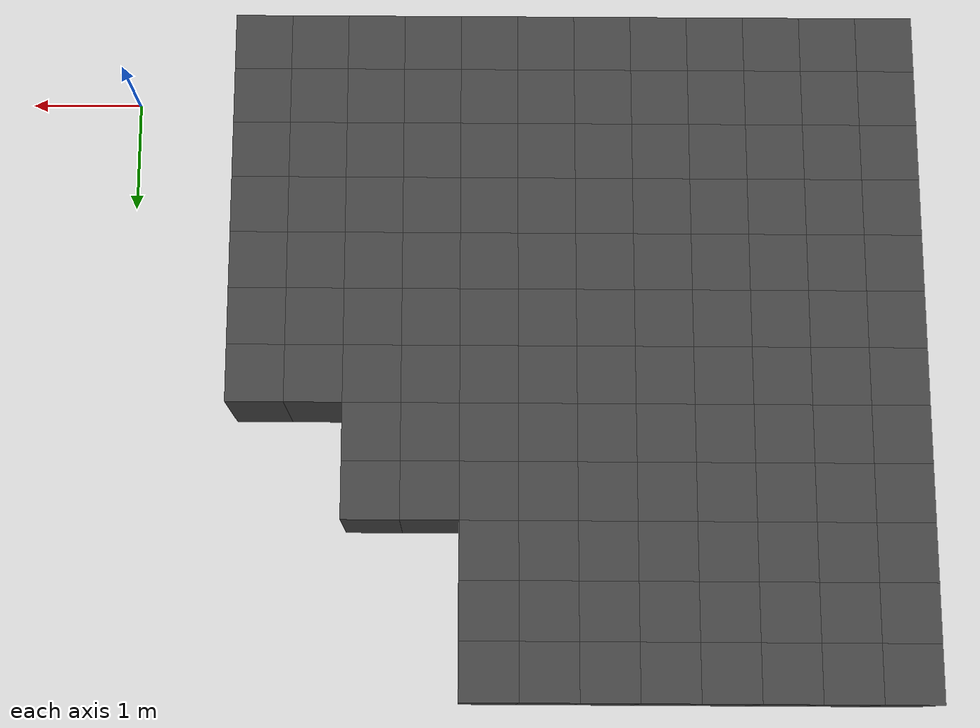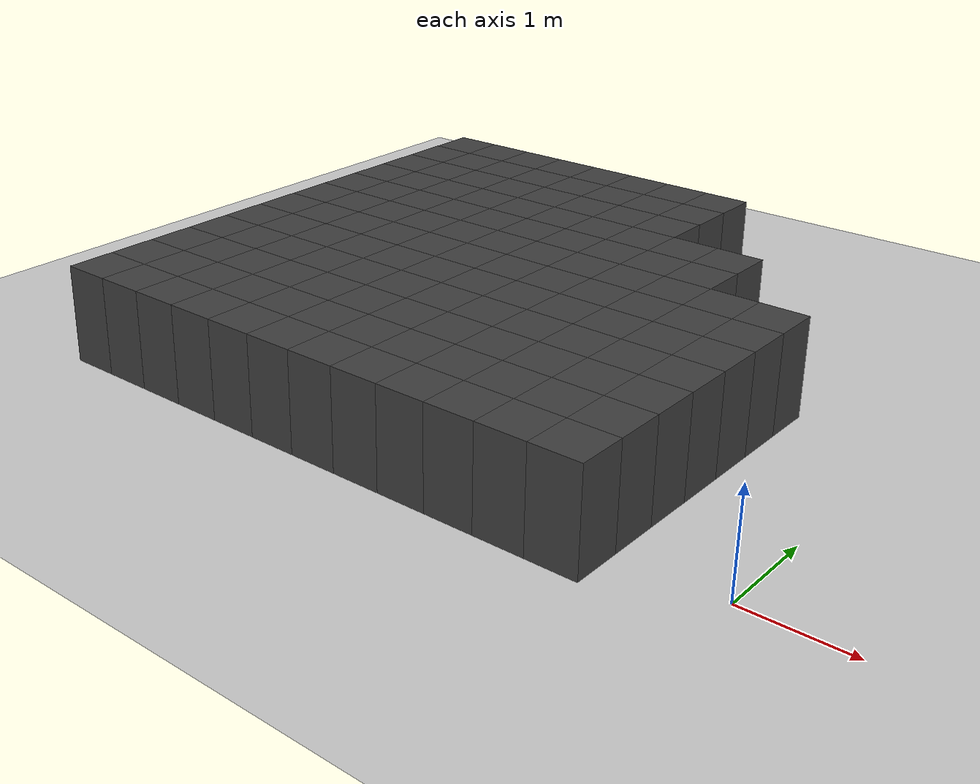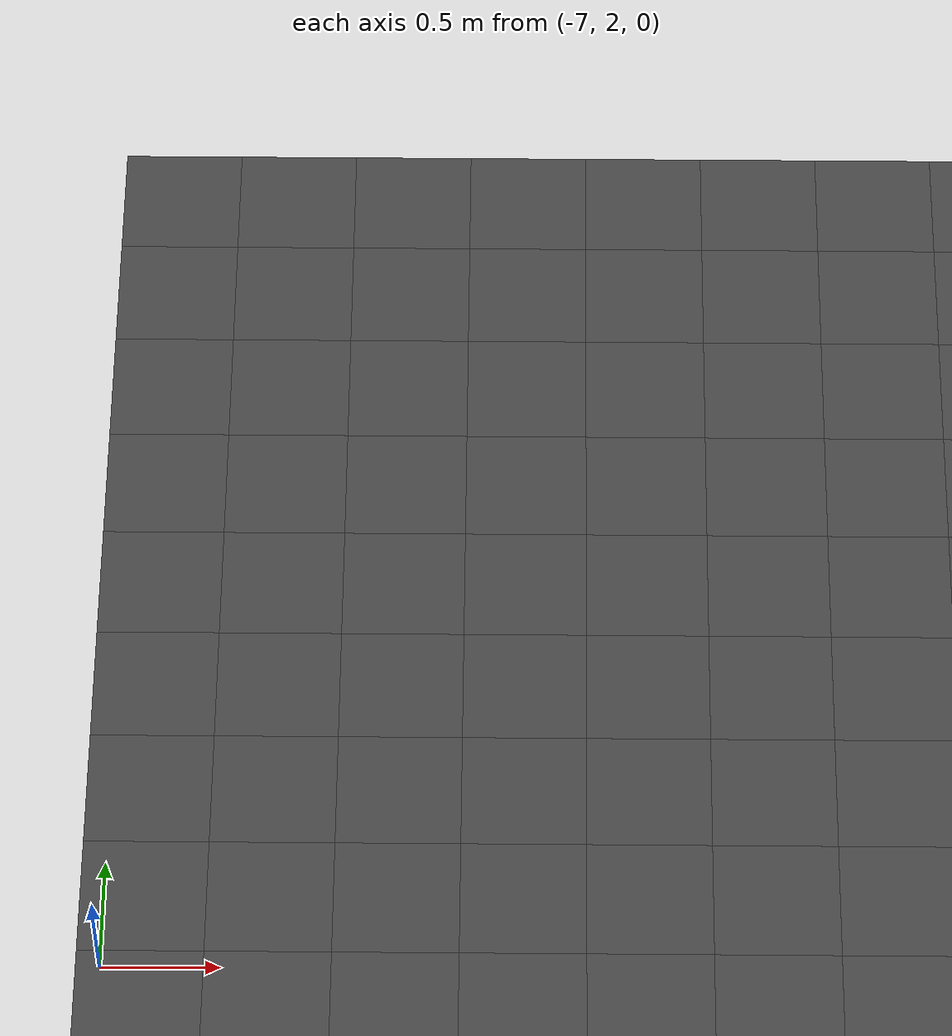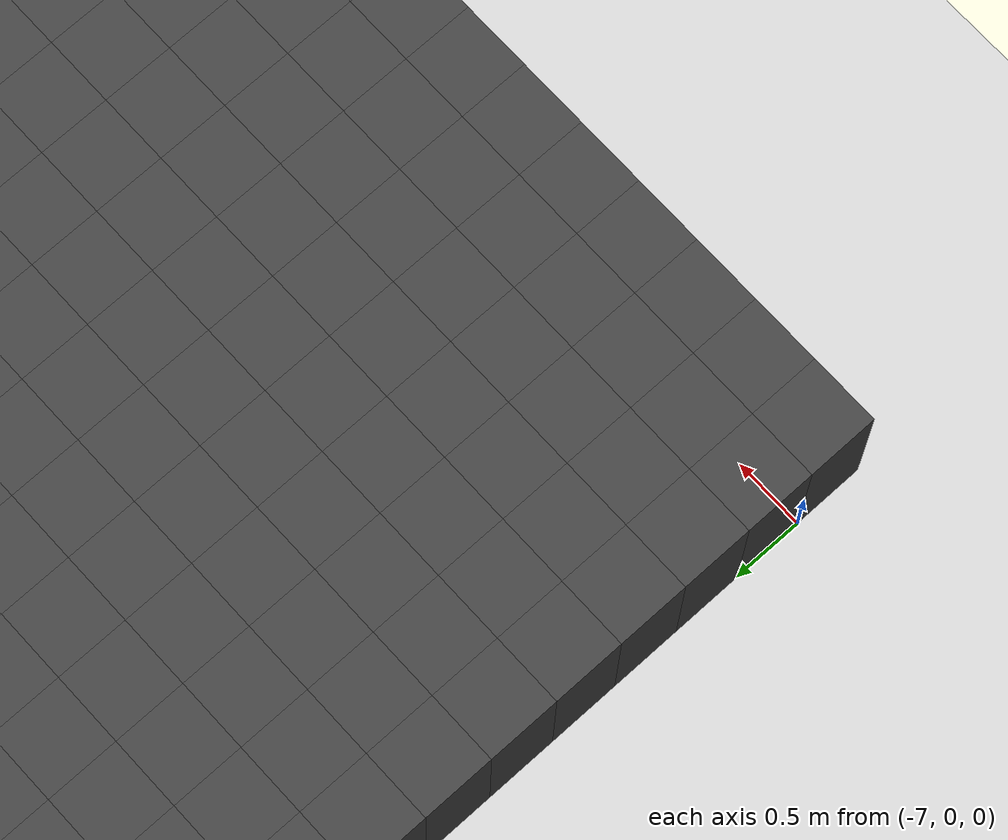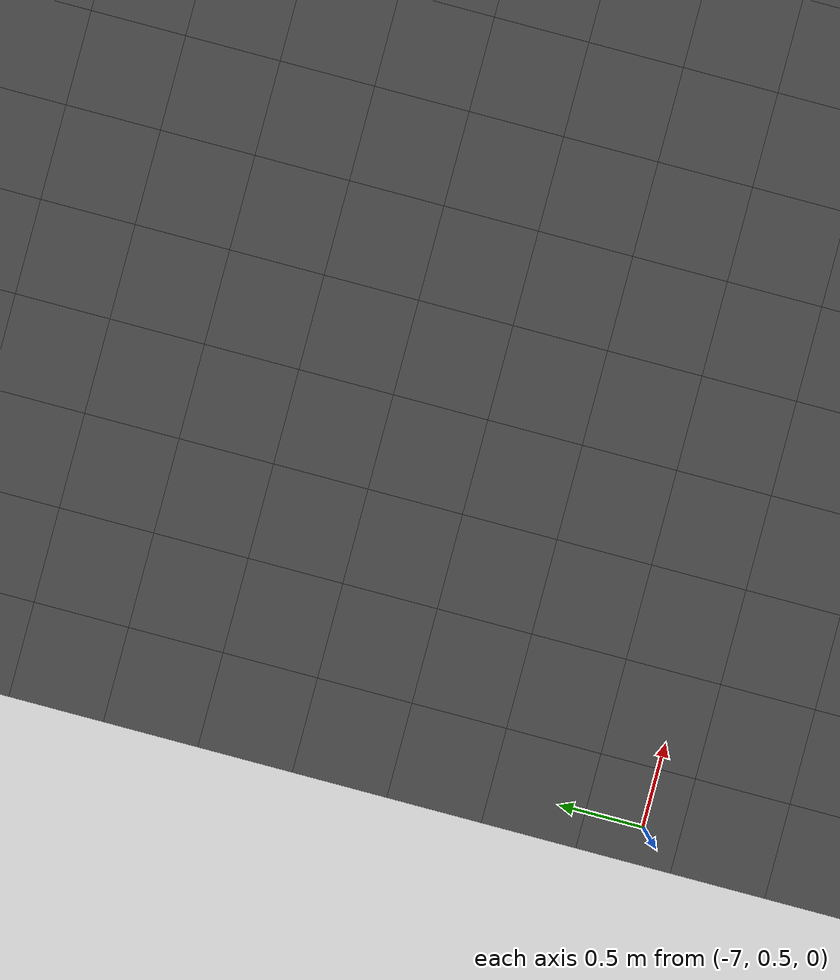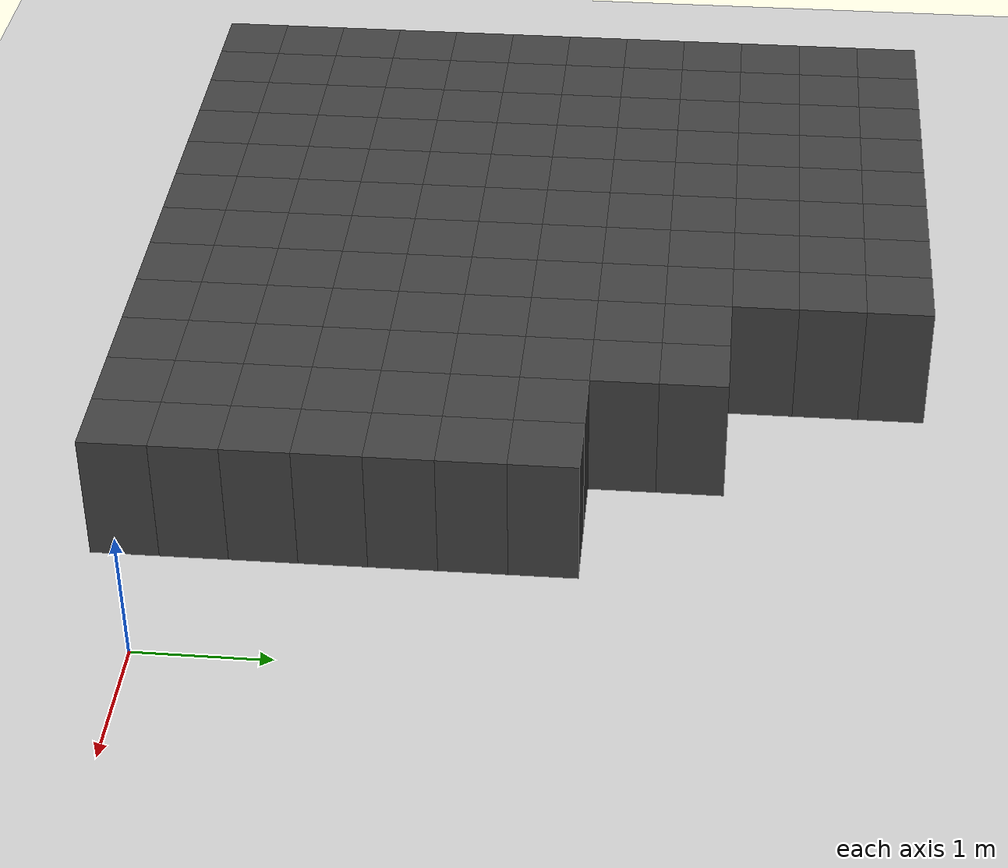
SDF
<sdf version="1.7">
 <world name="map_11515">
  <model name="ground_plane">
   <static>true</static>
   <link name="link">
    <collision name="collision">
     <geometry><plane><normal>0 0 1</normal><size>200 200</size></plane></geometry>
    </collision>
    <visual name="visual">
     <geometry><plane><normal>0 0 1</normal><size>200 200</size></plane></geometry>
     <material><ambient>0.8 0.8 0.8 1</ambient><diffuse>0.8 0.8 0.8 1</diffuse></material>
    </visual>
   </link>
  </model>
  <model name="maze_environment">
   <static>true</static>
   <link name="wall_610">
    <pose>-6.750 5.250 0.500 0 0 0</pose>
    <collision name="col"><geometry><box><size>0.5 0.5 1.0</size></box></geometry></collision>
    <visual name="vis">
     <geometry><box><size>0.5 0.5 1.0</size></box></geometry>
     <material><ambient>0.15 0.15 0.15 1</ambient><diffuse>0.25 0.25 0.25 1</diffuse></material>
    </visual>
   </link>
   <link name="wall_611">
    <pose>-6.250 5.250 0.500 0 0 0</pose>
    <collision name="col"><geometry><box><size>0.5 0.5 1.0</size></box></geometry></collision>
    <visual name="vis">
     <geometry><box><size>0.5 0.5 1.0</size></box></geometry>
     <material><ambient>0.15 0.15 0.15 1</ambient><diffuse>0.25 0.25 0.25 1</diffuse></material>
    </visual>
   </link>
   <link name="wall_612">
    <pose>-5.750 5.250 0.500 0 0 0</pose>
    <collision name="col"><geometry><box><size>0.5 0.5 1.0</size></box></geometry></collision>
    <visual name="vis">
     <geometry><box><size>0.5 0.5 1.0</size></box></geometry>
     <material><ambient>0.15 0.15 0.15 1</ambient><diffuse>0.25 0.25 0.25 1</diffuse></material>
    </visual>
   </link>
   <link name="wall_613">
    <pose>-5.250 5.250 0.500 0 0 0</pose>
    <collision name="col"><geometry><box><size>0.5 0.5 1.0</size></box></geometry></collision>
    <visual name="vis">
     <geometry><box><size>0.5 0.5 1.0</size></box></geometry>
     <material><ambient>0.15 0.15 0.15 1</ambient><diffuse>0.25 0.25 0.25 1</diffuse></material>
    </visual>
   </link>
   <link name="wall_614">
    <pose>-4.750 5.250 0.500 0 0 0</pose>
    <collision name="col"><geometry><box><size>0.5 0.5 1.0</size></box></geometry></collision>
    <visual name="vis">
     <geometry><box><size>0.5 0.5 1.0</size></box></geometry>
     <material><ambient>0.15 0.15 0.15 1</ambient><diffuse>0.25 0.25 0.25 1</diffuse></material>
    </visual>
   </link>
   <link name="wall_615">
    <pose>-4.250 5.250 0.500 0 0 0</pose>
    <collision name="col"><geometry><box><size>0.5 0.5 1.0</size></box></geometry></collision>
    <visual name="vis">
     <geometry><box><size>0.5 0.5 1.0</size></box></geometry>
     <material><ambient>0.15 0.15 0.15 1</ambient><diffuse>0.25 0.25 0.25 1</diffuse></material>
    </visual>
   </link>
   <link name="wall_616">
    <pose>-3.750 5.250 0.500 0 0 0</pose>
    <collision name="col"><geometry><box><size>0.5 0.5 1.0</size></box></geometry></collision>
    <visual name="vis">
     <geometry><box><size>0.5 0.5 1.0</size></box></geometry>
     <material><ambient>0.15 0.15 0.15 1</ambient><diffuse>0.25 0.25 0.25 1</diffuse></material>
    </visual>
   </link>
   <link name="wall_617">
    <pose>-3.250 5.250 0.500 0 0 0</pose>
    <collision name="col"><geometry><box><size>0.5 0.5 1.0</size></box></geometry></collision>
    <visual name="vis">
     <geometry><box><size>0.5 0.5 1.0</size></box></geometry>
     <material><ambient>0.15 0.15 0.15 1</ambient><diffuse>0.25 0.25 0.25 1</diffuse></material>
    </visual>
   </link>
   <link name="wall_654">
    <pose>-6.750 4.750 0.500 0 0 0</pose>
    <collision name="col"><geometry><box><size>0.5 0.5 1.0</size></box></geometry></collision>
    <visual name="vis">
     <geometry><box><size>0.5 0.5 1.0</size></box></geometry>
     <material><ambient>0.15 0.15 0.15 1</ambient><diffuse>0.25 0.25 0.25 1</diffuse></material>
    </visual>
   </link>
   <link name="wall_655">
    <pose>-6.250 4.750 0.500 0 0 0</pose>
    <collision name="col"><geometry><box><size>0.5 0.5 1.0</size></box></geometry></collision>
    <visual name="vis">
     <geometry><box><size>0.5 0.5 1.0</size></box></geometry>
     <material><ambient>0.15 0.15 0.15 1</ambient><diffuse>0.25 0.25 0.25 1</diffuse></material>
    </visual>
   </link>
   <link name="wall_656">
    <pose>-5.750 4.750 0.500 0 0 0</pose>
    <collision name="col"><geometry><box><size>0.5 0.5 1.0</size></box></geometry></collision>
    <visual name="vis">
     <geometry><box><size>0.5 0.5 1.0</size></box></geometry>
     <material><ambient>0.15 0.15 0.15 1</ambient><diffuse>0.25 0.25 0.25 1</diffuse></material>
    </visual>
   </link>
   <link name="wall_657">
    <pose>-5.250 4.750 0.500 0 0 0</pose>
    <collision name="col"><geometry><box><size>0.5 0.5 1.0</size></box></geometry></collision>
    <visual name="vis">
     <geometry><box><size>0.5 0.5 1.0</size></box></geometry>
     <material><ambient>0.15 0.15 0.15 1</ambient><diffuse>0.25 0.25 0.25 1</diffuse></material>
    </visual>
   </link>
   <link name="wall_658">
    <pose>-4.750 4.750 0.500 0 0 0</pose>
    <collision name="col"><geometry><box><size>0.5 0.5 1.0</size></box></geometry></collision>
    <visual name="vis">
     <geometry><box><size>0.5 0.5 1.0</size></box></geometry>
     <material><ambient>0.15 0.15 0.15 1</ambient><diffuse>0.25 0.25 0.25 1</diffuse></material>
    </visual>
   </link>
   <link name="wall_659">
    <pose>-4.250 4.750 0.500 0 0 0</pose>
    <collision name="col"><geometry><box><size>0.5 0.5 1.0</size></box></geometry></collision>
    <visual name="vis">
     <geometry><box><size>0.5 0.5 1.0</size></box></geometry>
     <material><ambient>0.15 0.15 0.15 1</ambient><diffuse>0.25 0.25 0.25 1</diffuse></material>
    </visual>
   </link>
   <link name="wall_660">
    <pose>-3.750 4.750 0.500 0 0 0</pose>
    <collision name="col"><geometry><box><size>0.5 0.5 1.0</size></box></geometry></collision>
    <visual name="vis">
     <geometry><box><size>0.5 0.5 1.0</size></box></geometry>
     <material><ambient>0.15 0.15 0.15 1</ambient><diffuse>0.25 0.25 0.25 1</diffuse></material>
    </visual>
   </link>
   <link name="wall_661">
    <pose>-3.250 4.750 0.500 0 0 0</pose>
    <collision name="col"><geometry><box><size>0.5 0.5 1.0</size></box></geometry></collision>
    <visual name="vis">
     <geometry><box><size>0.5 0.5 1.0</size></box></geometry>
     <material><ambient>0.15 0.15 0.15 1</ambient><diffuse>0.25 0.25 0.25 1</diffuse></material>
    </visual>
   </link>
   <link name="wall_694">
    <pose>-6.750 4.250 0.500 0 0 0</pose>
    <collision name="col"><geometry><box><size>0.5 0.5 1.0</size></box></geometry></collision>
    <visual name="vis">
     <geometry><box><size>0.5 0.5 1.0</size></box></geometry>
     <material><ambient>0.15 0.15 0.15 1</ambient><diffuse>0.25 0.25 0.25 1</diffuse></material>
    </visual>
   </link>
   <link name="wall_695">
    <pose>-6.250 4.250 0.500 0 0 0</pose>
    <collision name="col"><geometry><box><size>0.5 0.5 1.0</size></box></geometry></collision>
    <visual name="vis">
     <geometry><box><size>0.5 0.5 1.0</size></box></geometry>
     <material><ambient>0.15 0.15 0.15 1</ambient><diffuse>0.25 0.25 0.25 1</diffuse></material>
    </visual>
   </link>
   <link name="wall_696">
    <pose>-5.750 4.250 0.500 0 0 0</pose>
    <collision name="col"><geometry><box><size>0.5 0.5 1.0</size></box></geometry></collision>
    <visual name="vis">
     <geometry><box><size>0.5 0.5 1.0</size></box></geometry>
     <material><ambient>0.15 0.15 0.15 1</ambient><diffuse>0.25 0.25 0.25 1</diffuse></material>
    </visual>
   </link>
   <link name="wall_697">
    <pose>-5.250 4.250 0.500 0 0 0</pose>
    <collision name="col"><geometry><box><size>0.5 0.5 1.0</size></box></geometry></collision>
    <visual name="vis">
     <geometry><box><size>0.5 0.5 1.0</size></box></geometry>
     <material><ambient>0.15 0.15 0.15 1</ambient><diffuse>0.25 0.25 0.25 1</diffuse></material>
    </visual>
   </link>
   <link name="wall_698">
    <pose>-4.750 4.250 0.500 0 0 0</pose>
    <collision name="col"><geometry><box><size>0.5 0.5 1.0</size></box></geometry></collision>
    <visual name="vis">
     <geometry><box><size>0.5 0.5 1.0</size></box></geometry>
     <material><ambient>0.15 0.15 0.15 1</ambient><diffuse>0.25 0.25 0.25 1</diffuse></material>
    </visual>
   </link>
   <link name="wall_699">
    <pose>-4.250 4.250 0.500 0 0 0</pose>
    <collision name="col"><geometry><box><size>0.5 0.5 1.0</size></box></geometry></collision>
    <visual name="vis">
     <geometry><box><size>0.5 0.5 1.0</size></box></geometry>
     <material><ambient>0.15 0.15 0.15 1</ambient><diffuse>0.25 0.25 0.25 1</diffuse></material>
    </visual>
   </link>
   <link name="wall_700">
    <pose>-3.750 4.250 0.500 0 0 0</pose>
    <collision name="col"><geometry><box><size>0.5 0.5 1.0</size></box></geometry></collision>
    <visual name="vis">
     <geometry><box><size>0.5 0.5 1.0</size></box></geometry>
     <material><ambient>0.15 0.15 0.15 1</ambient><diffuse>0.25 0.25 0.25 1</diffuse></material>
    </visual>
   </link>
   <link name="wall_701">
    <pose>-3.250 4.250 0.500 0 0 0</pose>
    <collision name="col"><geometry><box><size>0.5 0.5 1.0</size></box></geometry></collision>
    <visual name="vis">
     <geometry><box><size>0.5 0.5 1.0</size></box></geometry>
     <material><ambient>0.15 0.15 0.15 1</ambient><diffuse>0.25 0.25 0.25 1</diffuse></material>
    </visual>
   </link>
   <link name="wall_734">
    <pose>-6.750 3.750 0.500 0 0 0</pose>
    <collision name="col"><geometry><box><size>0.5 0.5 1.0</size></box></geometry></collision>
    <visual name="vis">
     <geometry><box><size>0.5 0.5 1.0</size></box></geometry>
     <material><ambient>0.15 0.15 0.15 1</ambient><diffuse>0.25 0.25 0.25 1</diffuse></material>
    </visual>
   </link>
   <link name="wall_735">
    <pose>-6.250 3.750 0.500 0 0 0</pose>
    <collision name="col"><geometry><box><size>0.5 0.5 1.0</size></box></geometry></collision>
    <visual name="vis">
     <geometry><box><size>0.5 0.5 1.0</size></box></geometry>
     <material><ambient>0.15 0.15 0.15 1</ambient><diffuse>0.25 0.25 0.25 1</diffuse></material>
    </visual>
   </link>
   <link name="wall_736">
    <pose>-5.750 3.750 0.500 0 0 0</pose>
    <collision name="col"><geometry><box><size>0.5 0.5 1.0</size></box></geometry></collision>
    <visual name="vis">
     <geometry><box><size>0.5 0.5 1.0</size></box></geometry>
     <material><ambient>0.15 0.15 0.15 1</ambient><diffuse>0.25 0.25 0.25 1</diffuse></material>
    </visual>
   </link>
   <link name="wall_737">
    <pose>-5.250 3.750 0.500 0 0 0</pose>
    <collision name="col"><geometry><box><size>0.5 0.5 1.0</size></box></geometry></collision>
    <visual name="vis">
     <geometry><box><size>0.5 0.5 1.0</size></box></geometry>
     <material><ambient>0.15 0.15 0.15 1</ambient><diffuse>0.25 0.25 0.25 1</diffuse></material>
    </visual>
   </link>
   <link name="wall_738">
    <pose>-4.750 3.750 0.500 0 0 0</pose>
    <collision name="col"><geometry><box><size>0.5 0.5 1.0</size></box></geometry></collision>
    <visual name="vis">
     <geometry><box><size>0.5 0.5 1.0</size></box></geometry>
     <material><ambient>0.15 0.15 0.15 1</ambient><diffuse>0.25 0.25 0.25 1</diffuse></material>
    </visual>
   </link>
   <link name="wall_739">
    <pose>-4.250 3.750 0.500 0 0 0</pose>
    <collision name="col"><geometry><box><size>0.5 0.5 1.0</size></box></geometry></collision>
    <visual name="vis">
     <geometry><box><size>0.5 0.5 1.0</size></box></geometry>
     <material><ambient>0.15 0.15 0.15 1</ambient><diffuse>0.25 0.25 0.25 1</diffuse></material>
    </visual>
   </link>
   <link name="wall_740">
    <pose>-3.750 3.750 0.500 0 0 0</pose>
    <collision name="col"><geometry><box><size>0.5 0.5 1.0</size></box></geometry></collision>
    <visual name="vis">
     <geometry><box><size>0.5 0.5 1.0</size></box></geometry>
     <material><ambient>0.15 0.15 0.15 1</ambient><diffuse>0.25 0.25 0.25 1</diffuse></material>
    </visual>
   </link>
   <link name="wall_741">
    <pose>-3.250 3.750 0.500 0 0 0</pose>
    <collision name="col"><geometry><box><size>0.5 0.5 1.0</size></box></geometry></collision>
    <visual name="vis">
     <geometry><box><size>0.5 0.5 1.0</size></box></geometry>
     <material><ambient>0.15 0.15 0.15 1</ambient><diffuse>0.25 0.25 0.25 1</diffuse></material>
    </visual>
   </link>
   <link name="wall_742">
    <pose>-2.750 3.750 0.500 0 0 0</pose>
    <collision name="col"><geometry><box><size>0.5 0.5 1.0</size></box></geometry></collision>
    <visual name="vis">
     <geometry><box><size>0.5 0.5 1.0</size></box></geometry>
     <material><ambient>0.15 0.15 0.15 1</ambient><diffuse>0.25 0.25 0.25 1</diffuse></material>
    </visual>
   </link>
   <link name="wall_743">
    <pose>-2.250 3.750 0.500 0 0 0</pose>
    <collision name="col"><geometry><box><size>0.5 0.5 1.0</size></box></geometry></collision>
    <visual name="vis">
     <geometry><box><size>0.5 0.5 1.0</size></box></geometry>
     <material><ambient>0.15 0.15 0.15 1</ambient><diffuse>0.25 0.25 0.25 1</diffuse></material>
    </visual>
   </link>
   <link name="wall_776">
    <pose>-6.750 3.250 0.500 0 0 0</pose>
    <collision name="col"><geometry><box><size>0.5 0.5 1.0</size></box></geometry></collision>
    <visual name="vis">
     <geometry><box><size>0.5 0.5 1.0</size></box></geometry>
     <material><ambient>0.15 0.15 0.15 1</ambient><diffuse>0.25 0.25 0.25 1</diffuse></material>
    </visual>
   </link>
   <link name="wall_777">
    <pose>-6.250 3.250 0.500 0 0 0</pose>
    <collision name="col"><geometry><box><size>0.5 0.5 1.0</size></box></geometry></collision>
    <visual name="vis">
     <geometry><box><size>0.5 0.5 1.0</size></box></geometry>
     <material><ambient>0.15 0.15 0.15 1</ambient><diffuse>0.25 0.25 0.25 1</diffuse></material>
    </visual>
   </link>
   <link name="wall_778">
    <pose>-5.750 3.250 0.500 0 0 0</pose>
    <collision name="col"><geometry><box><size>0.5 0.5 1.0</size></box></geometry></collision>
    <visual name="vis">
     <geometry><box><size>0.5 0.5 1.0</size></box></geometry>
     <material><ambient>0.15 0.15 0.15 1</ambient><diffuse>0.25 0.25 0.25 1</diffuse></material>
    </visual>
   </link>
   <link name="wall_779">
    <pose>-5.250 3.250 0.500 0 0 0</pose>
    <collision name="col"><geometry><box><size>0.5 0.5 1.0</size></box></geometry></collision>
    <visual name="vis">
     <geometry><box><size>0.5 0.5 1.0</size></box></geometry>
     <material><ambient>0.15 0.15 0.15 1</ambient><diffuse>0.25 0.25 0.25 1</diffuse></material>
    </visual>
   </link>
   <link name="wall_780">
    <pose>-4.750 3.250 0.500 0 0 0</pose>
    <collision name="col"><geometry><box><size>0.5 0.5 1.0</size></box></geometry></collision>
    <visual name="vis">
     <geometry><box><size>0.5 0.5 1.0</size></box></geometry>
     <material><ambient>0.15 0.15 0.15 1</ambient><diffuse>0.25 0.25 0.25 1</diffuse></material>
    </visual>
   </link>
   <link name="wall_781">
    <pose>-4.250 3.250 0.500 0 0 0</pose>
    <collision name="col"><geometry><box><size>0.5 0.5 1.0</size></box></geometry></collision>
    <visual name="vis">
     <geometry><box><size>0.5 0.5 1.0</size></box></geometry>
     <material><ambient>0.15 0.15 0.15 1</ambient><diffuse>0.25 0.25 0.25 1</diffuse></material>
    </visual>
   </link>
   <link name="wall_782">
    <pose>-3.750 3.250 0.500 0 0 0</pose>
    <collision name="col"><geometry><box><size>0.5 0.5 1.0</size></box></geometry></collision>
    <visual name="vis">
     <geometry><box><size>0.5 0.5 1.0</size></box></geometry>
     <material><ambient>0.15 0.15 0.15 1</ambient><diffuse>0.25 0.25 0.25 1</diffuse></material>
    </visual>
   </link>
   <link name="wall_783">
    <pose>-3.250 3.250 0.500 0 0 0</pose>
    <collision name="col"><geometry><box><size>0.5 0.5 1.0</size></box></geometry></collision>
    <visual name="vis">
     <geometry><box><size>0.5 0.5 1.0</size></box></geometry>
     <material><ambient>0.15 0.15 0.15 1</ambient><diffuse>0.25 0.25 0.25 1</diffuse></material>
    </visual>
   </link>
   <link name="wall_784">
    <pose>-2.750 3.250 0.500 0 0 0</pose>
    <collision name="col"><geometry><box><size>0.5 0.5 1.0</size></box></geometry></collision>
    <visual name="vis">
     <geometry><box><size>0.5 0.5 1.0</size></box></geometry>
     <material><ambient>0.15 0.15 0.15 1</ambient><diffuse>0.25 0.25 0.25 1</diffuse></material>
    </visual>
   </link>
   <link name="wall_785">
    <pose>-2.250 3.250 0.500 0 0 0</pose>
    <collision name="col"><geometry><box><size>0.5 0.5 1.0</size></box></geometry></collision>
    <visual name="vis">
     <geometry><box><size>0.5 0.5 1.0</size></box></geometry>
     <material><ambient>0.15 0.15 0.15 1</ambient><diffuse>0.25 0.25 0.25 1</diffuse></material>
    </visual>
   </link>
   <link name="wall_810">
    <pose>-6.750 2.750 0.500 0 0 0</pose>
    <collision name="col"><geometry><box><size>0.5 0.5 1.0</size></box></geometry></collision>
    <visual name="vis">
     <geometry><box><size>0.5 0.5 1.0</size></box></geometry>
     <material><ambient>0.15 0.15 0.15 1</ambient><diffuse>0.25 0.25 0.25 1</diffuse></material>
    </visual>
   </link>
   <link name="wall_811">
    <pose>-6.250 2.750 0.500 0 0 0</pose>
    <collision name="col"><geometry><box><size>0.5 0.5 1.0</size></box></geometry></collision>
    <visual name="vis">
     <geometry><box><size>0.5 0.5 1.0</size></box></geometry>
     <material><ambient>0.15 0.15 0.15 1</ambient><diffuse>0.25 0.25 0.25 1</diffuse></material>
    </visual>
   </link>
   <link name="wall_812">
    <pose>-5.750 2.750 0.500 0 0 0</pose>
    <collision name="col"><geometry><box><size>0.5 0.5 1.0</size></box></geometry></collision>
    <visual name="vis">
     <geometry><box><size>0.5 0.5 1.0</size></box></geometry>
     <material><ambient>0.15 0.15 0.15 1</ambient><diffuse>0.25 0.25 0.25 1</diffuse></material>
    </visual>
   </link>
   <link name="wall_813">
    <pose>-5.250 2.750 0.500 0 0 0</pose>
    <collision name="col"><geometry><box><size>0.5 0.5 1.0</size></box></geometry></collision>
    <visual name="vis">
     <geometry><box><size>0.5 0.5 1.0</size></box></geometry>
     <material><ambient>0.15 0.15 0.15 1</ambient><diffuse>0.25 0.25 0.25 1</diffuse></material>
    </visual>
   </link>
   <link name="wall_814">
    <pose>-4.750 2.750 0.500 0 0 0</pose>
    <collision name="col"><geometry><box><size>0.5 0.5 1.0</size></box></geometry></collision>
    <visual name="vis">
     <geometry><box><size>0.5 0.5 1.0</size></box></geometry>
     <material><ambient>0.15 0.15 0.15 1</ambient><diffuse>0.25 0.25 0.25 1</diffuse></material>
    </visual>
   </link>
   <link name="wall_815">
    <pose>-4.250 2.750 0.500 0 0 0</pose>
    <collision name="col"><geometry><box><size>0.5 0.5 1.0</size></box></geometry></collision>
    <visual name="vis">
     <geometry><box><size>0.5 0.5 1.0</size></box></geometry>
     <material><ambient>0.15 0.15 0.15 1</ambient><diffuse>0.25 0.25 0.25 1</diffuse></material>
    </visual>
   </link>
   <link name="wall_816">
    <pose>-3.750 2.750 0.500 0 0 0</pose>
    <collision name="col"><geometry><box><size>0.5 0.5 1.0</size></box></geometry></collision>
    <visual name="vis">
     <geometry><box><size>0.5 0.5 1.0</size></box></geometry>
     <material><ambient>0.15 0.15 0.15 1</ambient><diffuse>0.25 0.25 0.25 1</diffuse></material>
    </visual>
   </link>
   <link name="wall_817">
    <pose>-3.250 2.750 0.500 0 0 0</pose>
    <collision name="col"><geometry><box><size>0.5 0.5 1.0</size></box></geometry></collision>
    <visual name="vis">
     <geometry><box><size>0.5 0.5 1.0</size></box></geometry>
     <material><ambient>0.15 0.15 0.15 1</ambient><diffuse>0.25 0.25 0.25 1</diffuse></material>
    </visual>
   </link>
   <link name="wall_818">
    <pose>-2.750 2.750 0.500 0 0 0</pose>
    <collision name="col"><geometry><box><size>0.5 0.5 1.0</size></box></geometry></collision>
    <visual name="vis">
     <geometry><box><size>0.5 0.5 1.0</size></box></geometry>
     <material><ambient>0.15 0.15 0.15 1</ambient><diffuse>0.25 0.25 0.25 1</diffuse></material>
    </visual>
   </link>
   <link name="wall_819">
    <pose>-2.250 2.750 0.500 0 0 0</pose>
    <collision name="col"><geometry><box><size>0.5 0.5 1.0</size></box></geometry></collision>
    <visual name="vis">
     <geometry><box><size>0.5 0.5 1.0</size></box></geometry>
     <material><ambient>0.15 0.15 0.15 1</ambient><diffuse>0.25 0.25 0.25 1</diffuse></material>
    </visual>
   </link>
   <link name="wall_820">
    <pose>-1.750 2.750 0.500 0 0 0</pose>
    <collision name="col"><geometry><box><size>0.5 0.5 1.0</size></box></geometry></collision>
    <visual name="vis">
     <geometry><box><size>0.5 0.5 1.0</size></box></geometry>
     <material><ambient>0.15 0.15 0.15 1</ambient><diffuse>0.25 0.25 0.25 1</diffuse></material>
    </visual>
   </link>
   <link name="wall_821">
    <pose>-1.250 2.750 0.500 0 0 0</pose>
    <collision name="col"><geometry><box><size>0.5 0.5 1.0</size></box></geometry></collision>
    <visual name="vis">
     <geometry><box><size>0.5 0.5 1.0</size></box></geometry>
     <material><ambient>0.15 0.15 0.15 1</ambient><diffuse>0.25 0.25 0.25 1</diffuse></material>
    </visual>
   </link>
   <link name="wall_846">
    <pose>-6.750 2.250 0.500 0 0 0</pose>
    <collision name="col"><geometry><box><size>0.5 0.5 1.0</size></box></geometry></collision>
    <visual name="vis">
     <geometry><box><size>0.5 0.5 1.0</size></box></geometry>
     <material><ambient>0.15 0.15 0.15 1</ambient><diffuse>0.25 0.25 0.25 1</diffuse></material>
    </visual>
   </link>
   <link name="wall_847">
    <pose>-6.250 2.250 0.500 0 0 0</pose>
    <collision name="col"><geometry><box><size>0.5 0.5 1.0</size></box></geometry></collision>
    <visual name="vis">
     <geometry><box><size>0.5 0.5 1.0</size></box></geometry>
     <material><ambient>0.15 0.15 0.15 1</ambient><diffuse>0.25 0.25 0.25 1</diffuse></material>
    </visual>
   </link>
   <link name="wall_848">
    <pose>-5.750 2.250 0.500 0 0 0</pose>
    <collision name="col"><geometry><box><size>0.5 0.5 1.0</size></box></geometry></collision>
    <visual name="vis">
     <geometry><box><size>0.5 0.5 1.0</size></box></geometry>
     <material><ambient>0.15 0.15 0.15 1</ambient><diffuse>0.25 0.25 0.25 1</diffuse></material>
    </visual>
   </link>
   <link name="wall_849">
    <pose>-5.250 2.250 0.500 0 0 0</pose>
    <collision name="col"><geometry><box><size>0.5 0.5 1.0</size></box></geometry></collision>
    <visual name="vis">
     <geometry><box><size>0.5 0.5 1.0</size></box></geometry>
     <material><ambient>0.15 0.15 0.15 1</ambient><diffuse>0.25 0.25 0.25 1</diffuse></material>
    </visual>
   </link>
   <link name="wall_850">
    <pose>-4.750 2.250 0.500 0 0 0</pose>
    <collision name="col"><geometry><box><size>0.5 0.5 1.0</size></box></geometry></collision>
    <visual name="vis">
     <geometry><box><size>0.5 0.5 1.0</size></box></geometry>
     <material><ambient>0.15 0.15 0.15 1</ambient><diffuse>0.25 0.25 0.25 1</diffuse></material>
    </visual>
   </link>
   <link name="wall_851">
    <pose>-4.250 2.250 0.500 0 0 0</pose>
    <collision name="col"><geometry><box><size>0.5 0.5 1.0</size></box></geometry></collision>
    <visual name="vis">
     <geometry><box><size>0.5 0.5 1.0</size></box></geometry>
     <material><ambient>0.15 0.15 0.15 1</ambient><diffuse>0.25 0.25 0.25 1</diffuse></material>
    </visual>
   </link>
   <link name="wall_852">
    <pose>-3.750 2.250 0.500 0 0 0</pose>
    <collision name="col"><geometry><box><size>0.5 0.5 1.0</size></box></geometry></collision>
    <visual name="vis">
     <geometry><box><size>0.5 0.5 1.0</size></box></geometry>
     <material><ambient>0.15 0.15 0.15 1</ambient><diffuse>0.25 0.25 0.25 1</diffuse></material>
    </visual>
   </link>
   <link name="wall_853">
    <pose>-3.250 2.250 0.500 0 0 0</pose>
    <collision name="col"><geometry><box><size>0.5 0.5 1.0</size></box></geometry></collision>
    <visual name="vis">
     <geometry><box><size>0.5 0.5 1.0</size></box></geometry>
     <material><ambient>0.15 0.15 0.15 1</ambient><diffuse>0.25 0.25 0.25 1</diffuse></material>
    </visual>
   </link>
   <link name="wall_854">
    <pose>-2.750 2.250 0.500 0 0 0</pose>
    <collision name="col"><geometry><box><size>0.5 0.5 1.0</size></box></geometry></collision>
    <visual name="vis">
     <geometry><box><size>0.5 0.5 1.0</size></box></geometry>
     <material><ambient>0.15 0.15 0.15 1</ambient><diffuse>0.25 0.25 0.25 1</diffuse></material>
    </visual>
   </link>
   <link name="wall_855">
    <pose>-2.250 2.250 0.500 0 0 0</pose>
    <collision name="col"><geometry><box><size>0.5 0.5 1.0</size></box></geometry></collision>
    <visual name="vis">
     <geometry><box><size>0.5 0.5 1.0</size></box></geometry>
     <material><ambient>0.15 0.15 0.15 1</ambient><diffuse>0.25 0.25 0.25 1</diffuse></material>
    </visual>
   </link>
   <link name="wall_856">
    <pose>-1.750 2.250 0.500 0 0 0</pose>
    <collision name="col"><geometry><box><size>0.5 0.5 1.0</size></box></geometry></collision>
    <visual name="vis">
     <geometry><box><size>0.5 0.5 1.0</size></box></geometry>
     <material><ambient>0.15 0.15 0.15 1</ambient><diffuse>0.25 0.25 0.25 1</diffuse></material>
    </visual>
   </link>
   <link name="wall_857">
    <pose>-1.250 2.250 0.500 0 0 0</pose>
    <collision name="col"><geometry><box><size>0.5 0.5 1.0</size></box></geometry></collision>
    <visual name="vis">
     <geometry><box><size>0.5 0.5 1.0</size></box></geometry>
     <material><ambient>0.15 0.15 0.15 1</ambient><diffuse>0.25 0.25 0.25 1</diffuse></material>
    </visual>
   </link>
   <link name="wall_872">
    <pose>-6.750 1.750 0.500 0 0 0</pose>
    <collision name="col"><geometry><box><size>0.5 0.5 1.0</size></box></geometry></collision>
    <visual name="vis">
     <geometry><box><size>0.5 0.5 1.0</size></box></geometry>
     <material><ambient>0.15 0.15 0.15 1</ambient><diffuse>0.25 0.25 0.25 1</diffuse></material>
    </visual>
   </link>
   <link name="wall_873">
    <pose>-6.250 1.750 0.500 0 0 0</pose>
    <collision name="col"><geometry><box><size>0.5 0.5 1.0</size></box></geometry></collision>
    <visual name="vis">
     <geometry><box><size>0.5 0.5 1.0</size></box></geometry>
     <material><ambient>0.15 0.15 0.15 1</ambient><diffuse>0.25 0.25 0.25 1</diffuse></material>
    </visual>
   </link>
   <link name="wall_874">
    <pose>-5.750 1.750 0.500 0 0 0</pose>
    <collision name="col"><geometry><box><size>0.5 0.5 1.0</size></box></geometry></collision>
    <visual name="vis">
     <geometry><box><size>0.5 0.5 1.0</size></box></geometry>
     <material><ambient>0.15 0.15 0.15 1</ambient><diffuse>0.25 0.25 0.25 1</diffuse></material>
    </visual>
   </link>
   <link name="wall_875">
    <pose>-5.250 1.750 0.500 0 0 0</pose>
    <collision name="col"><geometry><box><size>0.5 0.5 1.0</size></box></geometry></collision>
    <visual name="vis">
     <geometry><box><size>0.5 0.5 1.0</size></box></geometry>
     <material><ambient>0.15 0.15 0.15 1</ambient><diffuse>0.25 0.25 0.25 1</diffuse></material>
    </visual>
   </link>
   <link name="wall_876">
    <pose>-4.750 1.750 0.500 0 0 0</pose>
    <collision name="col"><geometry><box><size>0.5 0.5 1.0</size></box></geometry></collision>
    <visual name="vis">
     <geometry><box><size>0.5 0.5 1.0</size></box></geometry>
     <material><ambient>0.15 0.15 0.15 1</ambient><diffuse>0.25 0.25 0.25 1</diffuse></material>
    </visual>
   </link>
   <link name="wall_877">
    <pose>-4.250 1.750 0.500 0 0 0</pose>
    <collision name="col"><geometry><box><size>0.5 0.5 1.0</size></box></geometry></collision>
    <visual name="vis">
     <geometry><box><size>0.5 0.5 1.0</size></box></geometry>
     <material><ambient>0.15 0.15 0.15 1</ambient><diffuse>0.25 0.25 0.25 1</diffuse></material>
    </visual>
   </link>
   <link name="wall_878">
    <pose>-3.750 1.750 0.500 0 0 0</pose>
    <collision name="col"><geometry><box><size>0.5 0.5 1.0</size></box></geometry></collision>
    <visual name="vis">
     <geometry><box><size>0.5 0.5 1.0</size></box></geometry>
     <material><ambient>0.15 0.15 0.15 1</ambient><diffuse>0.25 0.25 0.25 1</diffuse></material>
    </visual>
   </link>
   <link name="wall_879">
    <pose>-3.250 1.750 0.500 0 0 0</pose>
    <collision name="col"><geometry><box><size>0.5 0.5 1.0</size></box></geometry></collision>
    <visual name="vis">
     <geometry><box><size>0.5 0.5 1.0</size></box></geometry>
     <material><ambient>0.15 0.15 0.15 1</ambient><diffuse>0.25 0.25 0.25 1</diffuse></material>
    </visual>
   </link>
   <link name="wall_880">
    <pose>-2.750 1.750 0.500 0 0 0</pose>
    <collision name="col"><geometry><box><size>0.5 0.5 1.0</size></box></geometry></collision>
    <visual name="vis">
     <geometry><box><size>0.5 0.5 1.0</size></box></geometry>
     <material><ambient>0.15 0.15 0.15 1</ambient><diffuse>0.25 0.25 0.25 1</diffuse></material>
    </visual>
   </link>
   <link name="wall_881">
    <pose>-2.250 1.750 0.500 0 0 0</pose>
    <collision name="col"><geometry><box><size>0.5 0.5 1.0</size></box></geometry></collision>
    <visual name="vis">
     <geometry><box><size>0.5 0.5 1.0</size></box></geometry>
     <material><ambient>0.15 0.15 0.15 1</ambient><diffuse>0.25 0.25 0.25 1</diffuse></material>
    </visual>
   </link>
   <link name="wall_882">
    <pose>-1.750 1.750 0.500 0 0 0</pose>
    <collision name="col"><geometry><box><size>0.5 0.5 1.0</size></box></geometry></collision>
    <visual name="vis">
     <geometry><box><size>0.5 0.5 1.0</size></box></geometry>
     <material><ambient>0.15 0.15 0.15 1</ambient><diffuse>0.25 0.25 0.25 1</diffuse></material>
    </visual>
   </link>
   <link name="wall_883">
    <pose>-1.250 1.750 0.500 0 0 0</pose>
    <collision name="col"><geometry><box><size>0.5 0.5 1.0</size></box></geometry></collision>
    <visual name="vis">
     <geometry><box><size>0.5 0.5 1.0</size></box></geometry>
     <material><ambient>0.15 0.15 0.15 1</ambient><diffuse>0.25 0.25 0.25 1</diffuse></material>
    </visual>
   </link>
   <link name="wall_908">
    <pose>-6.750 1.250 0.500 0 0 0</pose>
    <collision name="col"><geometry><box><size>0.5 0.5 1.0</size></box></geometry></collision>
    <visual name="vis">
     <geometry><box><size>0.5 0.5 1.0</size></box></geometry>
     <material><ambient>0.15 0.15 0.15 1</ambient><diffuse>0.25 0.25 0.25 1</diffuse></material>
    </visual>
   </link>
   <link name="wall_909">
    <pose>-6.250 1.250 0.500 0 0 0</pose>
    <collision name="col"><geometry><box><size>0.5 0.5 1.0</size></box></geometry></collision>
    <visual name="vis">
     <geometry><box><size>0.5 0.5 1.0</size></box></geometry>
     <material><ambient>0.15 0.15 0.15 1</ambient><diffuse>0.25 0.25 0.25 1</diffuse></material>
    </visual>
   </link>
   <link name="wall_910">
    <pose>-5.750 1.250 0.500 0 0 0</pose>
    <collision name="col"><geometry><box><size>0.5 0.5 1.0</size></box></geometry></collision>
    <visual name="vis">
     <geometry><box><size>0.5 0.5 1.0</size></box></geometry>
     <material><ambient>0.15 0.15 0.15 1</ambient><diffuse>0.25 0.25 0.25 1</diffuse></material>
    </visual>
   </link>
   <link name="wall_911">
    <pose>-5.250 1.250 0.500 0 0 0</pose>
    <collision name="col"><geometry><box><size>0.5 0.5 1.0</size></box></geometry></collision>
    <visual name="vis">
     <geometry><box><size>0.5 0.5 1.0</size></box></geometry>
     <material><ambient>0.15 0.15 0.15 1</ambient><diffuse>0.25 0.25 0.25 1</diffuse></material>
    </visual>
   </link>
   <link name="wall_912">
    <pose>-4.750 1.250 0.500 0 0 0</pose>
    <collision name="col"><geometry><box><size>0.5 0.5 1.0</size></box></geometry></collision>
    <visual name="vis">
     <geometry><box><size>0.5 0.5 1.0</size></box></geometry>
     <material><ambient>0.15 0.15 0.15 1</ambient><diffuse>0.25 0.25 0.25 1</diffuse></material>
    </visual>
   </link>
   <link name="wall_913">
    <pose>-4.250 1.250 0.500 0 0 0</pose>
    <collision name="col"><geometry><box><size>0.5 0.5 1.0</size></box></geometry></collision>
    <visual name="vis">
     <geometry><box><size>0.5 0.5 1.0</size></box></geometry>
     <material><ambient>0.15 0.15 0.15 1</ambient><diffuse>0.25 0.25 0.25 1</diffuse></material>
    </visual>
   </link>
   <link name="wall_914">
    <pose>-3.750 1.250 0.500 0 0 0</pose>
    <collision name="col"><geometry><box><size>0.5 0.5 1.0</size></box></geometry></collision>
    <visual name="vis">
     <geometry><box><size>0.5 0.5 1.0</size></box></geometry>
     <material><ambient>0.15 0.15 0.15 1</ambient><diffuse>0.25 0.25 0.25 1</diffuse></material>
    </visual>
   </link>
   <link name="wall_915">
    <pose>-3.250 1.250 0.500 0 0 0</pose>
    <collision name="col"><geometry><box><size>0.5 0.5 1.0</size></box></geometry></collision>
    <visual name="vis">
     <geometry><box><size>0.5 0.5 1.0</size></box></geometry>
     <material><ambient>0.15 0.15 0.15 1</ambient><diffuse>0.25 0.25 0.25 1</diffuse></material>
    </visual>
   </link>
   <link name="wall_916">
    <pose>-2.750 1.250 0.500 0 0 0</pose>
    <collision name="col"><geometry><box><size>0.5 0.5 1.0</size></box></geometry></collision>
    <visual name="vis">
     <geometry><box><size>0.5 0.5 1.0</size></box></geometry>
     <material><ambient>0.15 0.15 0.15 1</ambient><diffuse>0.25 0.25 0.25 1</diffuse></material>
    </visual>
   </link>
   <link name="wall_917">
    <pose>-2.250 1.250 0.500 0 0 0</pose>
    <collision name="col"><geometry><box><size>0.5 0.5 1.0</size></box></geometry></collision>
    <visual name="vis">
     <geometry><box><size>0.5 0.5 1.0</size></box></geometry>
     <material><ambient>0.15 0.15 0.15 1</ambient><diffuse>0.25 0.25 0.25 1</diffuse></material>
    </visual>
   </link>
   <link name="wall_918">
    <pose>-1.750 1.250 0.500 0 0 0</pose>
    <collision name="col"><geometry><box><size>0.5 0.5 1.0</size></box></geometry></collision>
    <visual name="vis">
     <geometry><box><size>0.5 0.5 1.0</size></box></geometry>
     <material><ambient>0.15 0.15 0.15 1</ambient><diffuse>0.25 0.25 0.25 1</diffuse></material>
    </visual>
   </link>
   <link name="wall_919">
    <pose>-1.250 1.250 0.500 0 0 0</pose>
    <collision name="col"><geometry><box><size>0.5 0.5 1.0</size></box></geometry></collision>
    <visual name="vis">
     <geometry><box><size>0.5 0.5 1.0</size></box></geometry>
     <material><ambient>0.15 0.15 0.15 1</ambient><diffuse>0.25 0.25 0.25 1</diffuse></material>
    </visual>
   </link>
   <link name="wall_944">
    <pose>-6.750 0.750 0.500 0 0 0</pose>
    <collision name="col"><geometry><box><size>0.5 0.5 1.0</size></box></geometry></collision>
    <visual name="vis">
     <geometry><box><size>0.5 0.5 1.0</size></box></geometry>
     <material><ambient>0.15 0.15 0.15 1</ambient><diffuse>0.25 0.25 0.25 1</diffuse></material>
    </visual>
   </link>
   <link name="wall_945">
    <pose>-6.250 0.750 0.500 0 0 0</pose>
    <collision name="col"><geometry><box><size>0.5 0.5 1.0</size></box></geometry></collision>
    <visual name="vis">
     <geometry><box><size>0.5 0.5 1.0</size></box></geometry>
     <material><ambient>0.15 0.15 0.15 1</ambient><diffuse>0.25 0.25 0.25 1</diffuse></material>
    </visual>
   </link>
   <link name="wall_946">
    <pose>-5.750 0.750 0.500 0 0 0</pose>
    <collision name="col"><geometry><box><size>0.5 0.5 1.0</size></box></geometry></collision>
    <visual name="vis">
     <geometry><box><size>0.5 0.5 1.0</size></box></geometry>
     <material><ambient>0.15 0.15 0.15 1</ambient><diffuse>0.25 0.25 0.25 1</diffuse></material>
    </visual>
   </link>
   <link name="wall_947">
    <pose>-5.250 0.750 0.500 0 0 0</pose>
    <collision name="col"><geometry><box><size>0.5 0.5 1.0</size></box></geometry></collision>
    <visual name="vis">
     <geometry><box><size>0.5 0.5 1.0</size></box></geometry>
     <material><ambient>0.15 0.15 0.15 1</ambient><diffuse>0.25 0.25 0.25 1</diffuse></material>
    </visual>
   </link>
   <link name="wall_948">
    <pose>-4.750 0.750 0.500 0 0 0</pose>
    <collision name="col"><geometry><box><size>0.5 0.5 1.0</size></box></geometry></collision>
    <visual name="vis">
     <geometry><box><size>0.5 0.5 1.0</size></box></geometry>
     <material><ambient>0.15 0.15 0.15 1</ambient><diffuse>0.25 0.25 0.25 1</diffuse></material>
    </visual>
   </link>
   <link name="wall_949">
    <pose>-4.250 0.750 0.500 0 0 0</pose>
    <collision name="col"><geometry><box><size>0.5 0.5 1.0</size></box></geometry></collision>
    <visual name="vis">
     <geometry><box><size>0.5 0.5 1.0</size></box></geometry>
     <material><ambient>0.15 0.15 0.15 1</ambient><diffuse>0.25 0.25 0.25 1</diffuse></material>
    </visual>
   </link>
   <link name="wall_950">
    <pose>-3.750 0.750 0.500 0 0 0</pose>
    <collision name="col"><geometry><box><size>0.5 0.5 1.0</size></box></geometry></collision>
    <visual name="vis">
     <geometry><box><size>0.5 0.5 1.0</size></box></geometry>
     <material><ambient>0.15 0.15 0.15 1</ambient><diffuse>0.25 0.25 0.25 1</diffuse></material>
    </visual>
   </link>
   <link name="wall_951">
    <pose>-3.250 0.750 0.500 0 0 0</pose>
    <collision name="col"><geometry><box><size>0.5 0.5 1.0</size></box></geometry></collision>
    <visual name="vis">
     <geometry><box><size>0.5 0.5 1.0</size></box></geometry>
     <material><ambient>0.15 0.15 0.15 1</ambient><diffuse>0.25 0.25 0.25 1</diffuse></material>
    </visual>
   </link>
   <link name="wall_952">
    <pose>-2.750 0.750 0.500 0 0 0</pose>
    <collision name="col"><geometry><box><size>0.5 0.5 1.0</size></box></geometry></collision>
    <visual name="vis">
     <geometry><box><size>0.5 0.5 1.0</size></box></geometry>
     <material><ambient>0.15 0.15 0.15 1</ambient><diffuse>0.25 0.25 0.25 1</diffuse></material>
    </visual>
   </link>
   <link name="wall_953">
    <pose>-2.250 0.750 0.500 0 0 0</pose>
    <collision name="col"><geometry><box><size>0.5 0.5 1.0</size></box></geometry></collision>
    <visual name="vis">
     <geometry><box><size>0.5 0.5 1.0</size></box></geometry>
     <material><ambient>0.15 0.15 0.15 1</ambient><diffuse>0.25 0.25 0.25 1</diffuse></material>
    </visual>
   </link>
   <link name="wall_954">
    <pose>-1.750 0.750 0.500 0 0 0</pose>
    <collision name="col"><geometry><box><size>0.5 0.5 1.0</size></box></geometry></collision>
    <visual name="vis">
     <geometry><box><size>0.5 0.5 1.0</size></box></geometry>
     <material><ambient>0.15 0.15 0.15 1</ambient><diffuse>0.25 0.25 0.25 1</diffuse></material>
    </visual>
   </link>
   <link name="wall_955">
    <pose>-1.250 0.750 0.500 0 0 0</pose>
    <collision name="col"><geometry><box><size>0.5 0.5 1.0</size></box></geometry></collision>
    <visual name="vis">
     <geometry><box><size>0.5 0.5 1.0</size></box></geometry>
     <material><ambient>0.15 0.15 0.15 1</ambient><diffuse>0.25 0.25 0.25 1</diffuse></material>
    </visual>
   </link>
   <link name="wall_993">
    <pose>-6.750 0.250 0.500 0 0 0</pose>
    <collision name="col"><geometry><box><size>0.5 0.5 1.0</size></box></geometry></collision>
    <visual name="vis">
     <geometry><box><size>0.5 0.5 1.0</size></box></geometry>
     <material><ambient>0.15 0.15 0.15 1</ambient><diffuse>0.25 0.25 0.25 1</diffuse></material>
    </visual>
   </link>
   <link name="wall_994">
    <pose>-6.250 0.250 0.500 0 0 0</pose>
    <collision name="col"><geometry><box><size>0.5 0.5 1.0</size></box></geometry></collision>
    <visual name="vis">
     <geometry><box><size>0.5 0.5 1.0</size></box></geometry>
     <material><ambient>0.15 0.15 0.15 1</ambient><diffuse>0.25 0.25 0.25 1</diffuse></material>
    </visual>
   </link>
   <link name="wall_995">
    <pose>-5.750 0.250 0.500 0 0 0</pose>
    <collision name="col"><geometry><box><size>0.5 0.5 1.0</size></box></geometry></collision>
    <visual name="vis">
     <geometry><box><size>0.5 0.5 1.0</size></box></geometry>
     <material><ambient>0.15 0.15 0.15 1</ambient><diffuse>0.25 0.25 0.25 1</diffuse></material>
    </visual>
   </link>
   <link name="wall_996">
    <pose>-5.250 0.250 0.500 0 0 0</pose>
    <collision name="col"><geometry><box><size>0.5 0.5 1.0</size></box></geometry></collision>
    <visual name="vis">
     <geometry><box><size>0.5 0.5 1.0</size></box></geometry>
     <material><ambient>0.15 0.15 0.15 1</ambient><diffuse>0.25 0.25 0.25 1</diffuse></material>
    </visual>
   </link>
   <link name="wall_997">
    <pose>-4.750 0.250 0.500 0 0 0</pose>
    <collision name="col"><geometry><box><size>0.5 0.5 1.0</size></box></geometry></collision>
    <visual name="vis">
     <geometry><box><size>0.5 0.5 1.0</size></box></geometry>
     <material><ambient>0.15 0.15 0.15 1</ambient><diffuse>0.25 0.25 0.25 1</diffuse></material>
    </visual>
   </link>
   <link name="wall_998">
    <pose>-4.250 0.250 0.500 0 0 0</pose>
    <collision name="col"><geometry><box><size>0.5 0.5 1.0</size></box></geometry></collision>
    <visual name="vis">
     <geometry><box><size>0.5 0.5 1.0</size></box></geometry>
     <material><ambient>0.15 0.15 0.15 1</ambient><diffuse>0.25 0.25 0.25 1</diffuse></material>
    </visual>
   </link>
   <link name="wall_999">
    <pose>-3.750 0.250 0.500 0 0 0</pose>
    <collision name="col"><geometry><box><size>0.5 0.5 1.0</size></box></geometry></collision>
    <visual name="vis">
     <geometry><box><size>0.5 0.5 1.0</size></box></geometry>
     <material><ambient>0.15 0.15 0.15 1</ambient><diffuse>0.25 0.25 0.25 1</diffuse></material>
    </visual>
   </link>
   <link name="wall_1000">
    <pose>-3.250 0.250 0.500 0 0 0</pose>
    <collision name="col"><geometry><box><size>0.5 0.5 1.0</size></box></geometry></collision>
    <visual name="vis">
     <geometry><box><size>0.5 0.5 1.0</size></box></geometry>
     <material><ambient>0.15 0.15 0.15 1</ambient><diffuse>0.25 0.25 0.25 1</diffuse></material>
    </visual>
   </link>
   <link name="wall_1001">
    <pose>-2.750 0.250 0.500 0 0 0</pose>
    <collision name="col"><geometry><box><size>0.5 0.5 1.0</size></box></geometry></collision>
    <visual name="vis">
     <geometry><box><size>0.5 0.5 1.0</size></box></geometry>
     <material><ambient>0.15 0.15 0.15 1</ambient><diffuse>0.25 0.25 0.25 1</diffuse></material>
    </visual>
   </link>
   <link name="wall_1002">
    <pose>-2.250 0.250 0.500 0 0 0</pose>
    <collision name="col"><geometry><box><size>0.5 0.5 1.0</size></box></geometry></collision>
    <visual name="vis">
     <geometry><box><size>0.5 0.5 1.0</size></box></geometry>
     <material><ambient>0.15 0.15 0.15 1</ambient><diffuse>0.25 0.25 0.25 1</diffuse></material>
    </visual>
   </link>
   <link name="wall_1003">
    <pose>-1.750 0.250 0.500 0 0 0</pose>
    <collision name="col"><geometry><box><size>0.5 0.5 1.0</size></box></geometry></collision>
    <visual name="vis">
     <geometry><box><size>0.5 0.5 1.0</size></box></geometry>
     <material><ambient>0.15 0.15 0.15 1</ambient><diffuse>0.25 0.25 0.25 1</diffuse></material>
    </visual>
   </link>
   <link name="wall_1004">
    <pose>-1.250 0.250 0.500 0 0 0</pose>
    <collision name="col"><geometry><box><size>0.5 0.5 1.0</size></box></geometry></collision>
    <visual name="vis">
     <geometry><box><size>0.5 0.5 1.0</size></box></geometry>
     <material><ambient>0.15 0.15 0.15 1</ambient><diffuse>0.25 0.25 0.25 1</diffuse></material>
    </visual>
   </link>
   <link name="wall_1042">
    <pose>-6.750 -0.250 0.500 0 0 0</pose>
    <collision name="col"><geometry><box><size>0.5 0.5 1.0</size></box></geometry></collision>
    <visual name="vis">
     <geometry><box><size>0.5 0.5 1.0</size></box></geometry>
     <material><ambient>0.15 0.15 0.15 1</ambient><diffuse>0.25 0.25 0.25 1</diffuse></material>
    </visual>
   </link>
   <link name="wall_1043">
    <pose>-6.250 -0.250 0.500 0 0 0</pose>
    <collision name="col"><geometry><box><size>0.5 0.5 1.0</size></box></geometry></collision>
    <visual name="vis">
     <geometry><box><size>0.5 0.5 1.0</size></box></geometry>
     <material><ambient>0.15 0.15 0.15 1</ambient><diffuse>0.25 0.25 0.25 1</diffuse></material>
    </visual>
   </link>
   <link name="wall_1044">
    <pose>-5.750 -0.250 0.500 0 0 0</pose>
    <collision name="col"><geometry><box><size>0.5 0.5 1.0</size></box></geometry></collision>
    <visual name="vis">
     <geometry><box><size>0.5 0.5 1.0</size></box></geometry>
     <material><ambient>0.15 0.15 0.15 1</ambient><diffuse>0.25 0.25 0.25 1</diffuse></material>
    </visual>
   </link>
   <link name="wall_1045">
    <pose>-5.250 -0.250 0.500 0 0 0</pose>
    <collision name="col"><geometry><box><size>0.5 0.5 1.0</size></box></geometry></collision>
    <visual name="vis">
     <geometry><box><size>0.5 0.5 1.0</size></box></geometry>
     <material><ambient>0.15 0.15 0.15 1</ambient><diffuse>0.25 0.25 0.25 1</diffuse></material>
    </visual>
   </link>
   <link name="wall_1046">
    <pose>-4.750 -0.250 0.500 0 0 0</pose>
    <collision name="col"><geometry><box><size>0.5 0.5 1.0</size></box></geometry></collision>
    <visual name="vis">
     <geometry><box><size>0.5 0.5 1.0</size></box></geometry>
     <material><ambient>0.15 0.15 0.15 1</ambient><diffuse>0.25 0.25 0.25 1</diffuse></material>
    </visual>
   </link>
   <link name="wall_1047">
    <pose>-4.250 -0.250 0.500 0 0 0</pose>
    <collision name="col"><geometry><box><size>0.5 0.5 1.0</size></box></geometry></collision>
    <visual name="vis">
     <geometry><box><size>0.5 0.5 1.0</size></box></geometry>
     <material><ambient>0.15 0.15 0.15 1</ambient><diffuse>0.25 0.25 0.25 1</diffuse></material>
    </visual>
   </link>
   <link name="wall_1048">
    <pose>-3.750 -0.250 0.500 0 0 0</pose>
    <collision name="col"><geometry><box><size>0.5 0.5 1.0</size></box></geometry></collision>
    <visual name="vis">
     <geometry><box><size>0.5 0.5 1.0</size></box></geometry>
     <material><ambient>0.15 0.15 0.15 1</ambient><diffuse>0.25 0.25 0.25 1</diffuse></material>
    </visual>
   </link>
   <link name="wall_1049">
    <pose>-3.250 -0.250 0.500 0 0 0</pose>
    <collision name="col"><geometry><box><size>0.5 0.5 1.0</size></box></geometry></collision>
    <visual name="vis">
     <geometry><box><size>0.5 0.5 1.0</size></box></geometry>
     <material><ambient>0.15 0.15 0.15 1</ambient><diffuse>0.25 0.25 0.25 1</diffuse></material>
    </visual>
   </link>
   <link name="wall_1050">
    <pose>-2.750 -0.250 0.500 0 0 0</pose>
    <collision name="col"><geometry><box><size>0.5 0.5 1.0</size></box></geometry></collision>
    <visual name="vis">
     <geometry><box><size>0.5 0.5 1.0</size></box></geometry>
     <material><ambient>0.15 0.15 0.15 1</ambient><diffuse>0.25 0.25 0.25 1</diffuse></material>
    </visual>
   </link>
   <link name="wall_1051">
    <pose>-2.250 -0.250 0.500 0 0 0</pose>
    <collision name="col"><geometry><box><size>0.5 0.5 1.0</size></box></geometry></collision>
    <visual name="vis">
     <geometry><box><size>0.5 0.5 1.0</size></box></geometry>
     <material><ambient>0.15 0.15 0.15 1</ambient><diffuse>0.25 0.25 0.25 1</diffuse></material>
    </visual>
   </link>
   <link name="wall_1052">
    <pose>-1.750 -0.250 0.500 0 0 0</pose>
    <collision name="col"><geometry><box><size>0.5 0.5 1.0</size></box></geometry></collision>
    <visual name="vis">
     <geometry><box><size>0.5 0.5 1.0</size></box></geometry>
     <material><ambient>0.15 0.15 0.15 1</ambient><diffuse>0.25 0.25 0.25 1</diffuse></material>
    </visual>
   </link>
   <link name="wall_1053">
    <pose>-1.250 -0.250 0.500 0 0 0</pose>
    <collision name="col"><geometry><box><size>0.5 0.5 1.0</size></box></geometry></collision>
    <visual name="vis">
     <geometry><box><size>0.5 0.5 1.0</size></box></geometry>
     <material><ambient>0.15 0.15 0.15 1</ambient><diffuse>0.25 0.25 0.25 1</diffuse></material>
    </visual>
   </link>
  </model>
 </world>
</sdf>
